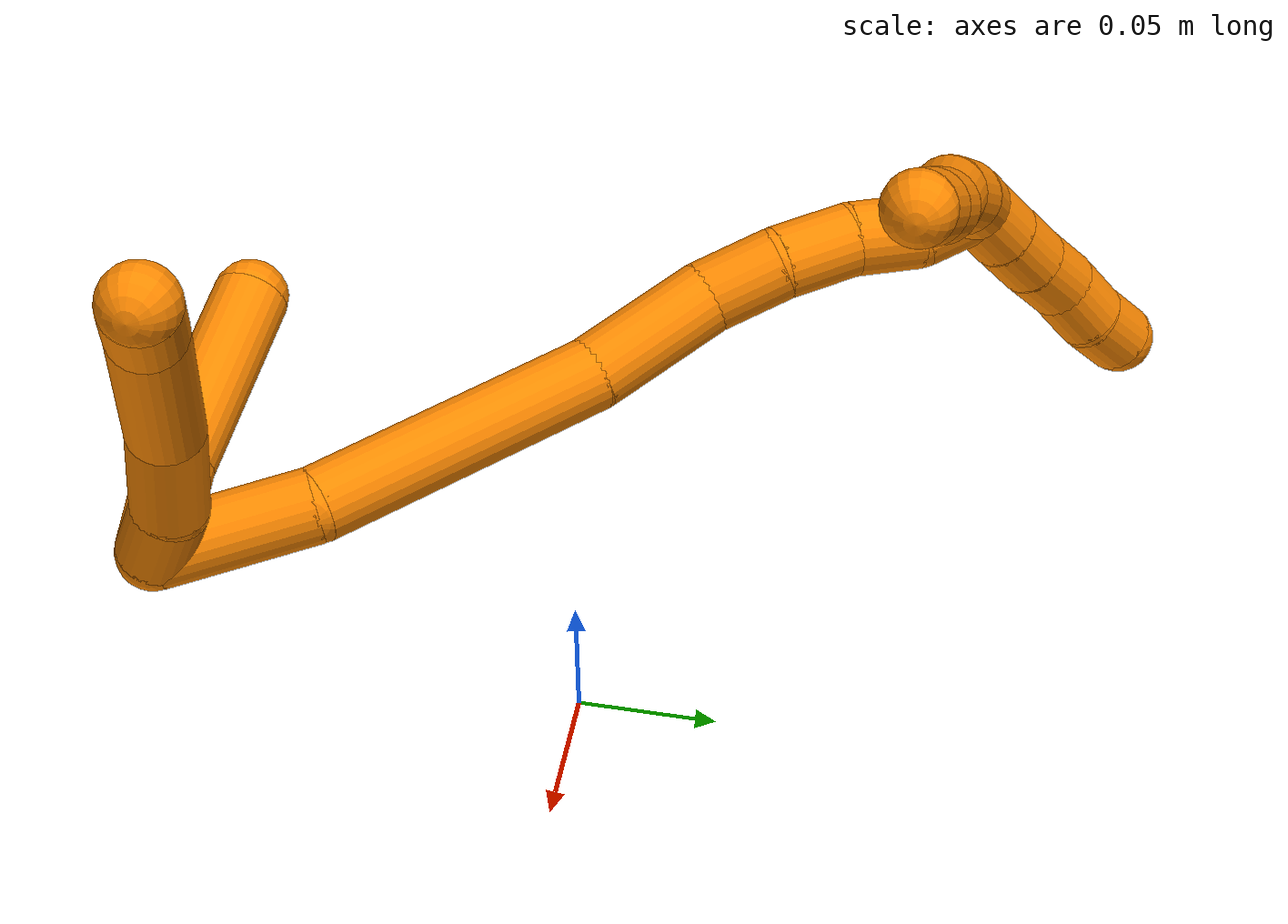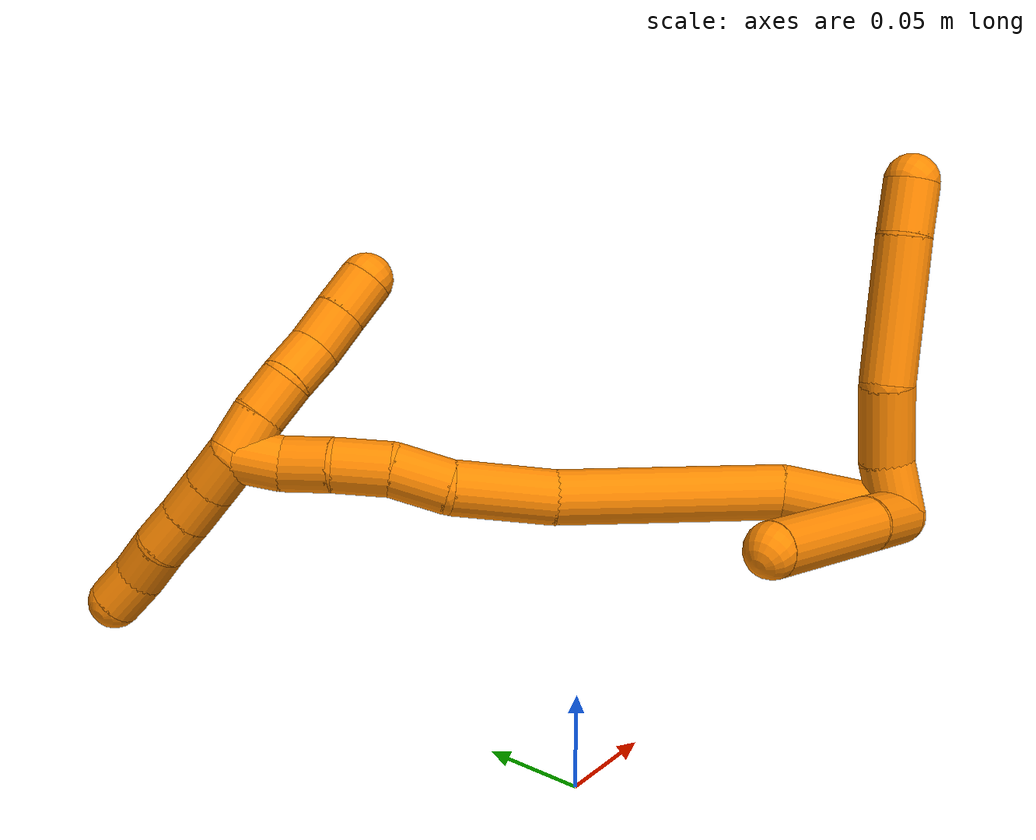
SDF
<sdf version="1.7">
 <world name="default">
  <model name="19">
   <static>0</static>
   <link name="19">
    <collision name="collision-cylinder-e_1_2_8">
     <pose>-0.01147 -0.00306 0.004417 0.605882 -1.13271 -0.392362</pose>
     <geometry><cylinder><radius>0.0125</radius><length>0.025333</length></cylinder></geometry>
     <surface>
      <friction><ode><mu>1.16</mu><mu2>1.16</mu2><slip1>0</slip1><slip2>0</slip2></ode></friction>
      <contact><ode><kp>1e+06</kp><kd>1</kd><max_vel>0</max_vel><min_depth>0.001</min_depth></ode></contact>
     </surface>
    </collision>
    <visual name="visual-cylinder-e_1_2_8">
     <pose>-0.01147 -0.00306 0.004417 0.605882 -1.13271 -0.392362</pose>
     <geometry><cylinder><radius>0.0125</radius><length>0.025333</length></cylinder></geometry>
     <material><ambient>0.996078 0.537255 0 1</ambient></material>
    </visual>
    <collision name="collision-cylinder-e_2_8_9">
     <pose>-0.037577 -0.014695 0.014599 0.978862 -0.956077 -0.538556</pose>
     <geometry><cylinder><radius>0.0125</radius><length>0.035832</length></cylinder></geometry>
     <surface>
      <friction><ode><mu>1.16</mu><mu2>1.16</mu2><slip1>0</slip1><slip2>0</slip2></ode></friction>
      <contact><ode><kp>1e+06</kp><kd>1</kd><max_vel>0</max_vel><min_depth>0.001</min_depth></ode></contact>
     </surface>
    </collision>
    <visual name="visual-cylinder-e_2_8_9">
     <pose>-0.037577 -0.014695 0.014599 0.978862 -0.956077 -0.538556</pose>
     <geometry><cylinder><radius>0.0125</radius><length>0.035832</length></cylinder></geometry>
     <material><ambient>0.996078 0.537255 0 1</ambient></material>
    </visual>
    <collision name="collision-cylinder-e_3_9_10">
     <pose>-0.075669 -0.035621 0.039149 0.581651 -0.806594 -0.254049</pose>
     <geometry><cylinder><radius>0.0125</radius><length>0.064981</length></cylinder></geometry>
     <surface>
      <friction><ode><mu>1.16</mu><mu2>1.16</mu2><slip1>0</slip1><slip2>0</slip2></ode></friction>
      <contact><ode><kp>1e+06</kp><kd>1</kd><max_vel>0</max_vel><min_depth>0.001</min_depth></ode></contact>
     </surface>
    </collision>
    <visual name="visual-cylinder-e_3_9_10">
     <pose>-0.075669 -0.035621 0.039149 0.581651 -0.806594 -0.254049</pose>
     <geometry><cylinder><radius>0.0125</radius><length>0.064981</length></cylinder></geometry>
     <material><ambient>0.996078 0.537255 0 1</ambient></material>
    </visual>
    <collision name="collision-cylinder-e_4_10_6">
     <pose>-0.107109 -0.051612 0.066014 0.423146 -0.733352 -0.164603</pose>
     <geometry><cylinder><radius>0.0125</radius><length>0.023854</length></cylinder></geometry>
     <surface>
      <friction><ode><mu>1.16</mu><mu2>1.16</mu2><slip1>0</slip1><slip2>0</slip2></ode></friction>
      <contact><ode><kp>1e+06</kp><kd>1</kd><max_vel>0</max_vel><min_depth>0.001</min_depth></ode></contact>
     </surface>
    </collision>
    <visual name="visual-cylinder-e_4_10_6">
     <pose>-0.107109 -0.051612 0.066014 0.423146 -0.733352 -0.164603</pose>
     <geometry><cylinder><radius>0.0125</radius><length>0.023854</length></cylinder></geometry>
     <material><ambient>0.996078 0.537255 0 1</ambient></material>
    </visual>
    <collision name="collision-cylinder-e_1_2_11">
     <pose>-0.006689 -0.00482 -0.013537 2.79954 -0.435666 -1.81639</pose>
     <geometry><cylinder><radius>0.0125</radius><length>0.0317</length></cylinder></geometry>
     <surface>
      <friction><ode><mu>1.16</mu><mu2>1.16</mu2><slip1>0</slip1><slip2>0</slip2></ode></friction>
      <contact><ode><kp>1e+06</kp><kd>1</kd><max_vel>0</max_vel><min_depth>0.001</min_depth></ode></contact>
     </surface>
    </collision>
    <visual name="visual-cylinder-e_1_2_11">
     <pose>-0.006689 -0.00482 -0.013537 2.79954 -0.435666 -1.81639</pose>
     <geometry><cylinder><radius>0.0125</radius><length>0.0317</length></cylinder></geometry>
     <material><ambient>0.996078 0.537255 0 1</ambient></material>
    </visual>
    <collision name="collision-cylinder-e_2_11_5">
     <pose>-0.028436 -0.014964 -0.057259 2.967 -0.456644 -2.42119</pose>
     <geometry><cylinder><radius>0.0125</radius><length>0.0683</length></cylinder></geometry>
     <surface>
      <friction><ode><mu>1.16</mu><mu2>1.16</mu2><slip1>0</slip1><slip2>0</slip2></ode></friction>
      <contact><ode><kp>1e+06</kp><kd>1</kd><max_vel>0</max_vel><min_depth>0.001</min_depth></ode></contact>
     </surface>
    </collision>
    <visual name="visual-cylinder-e_2_11_5">
     <pose>-0.028436 -0.014964 -0.057259 2.967 -0.456644 -2.42119</pose>
     <geometry><cylinder><radius>0.0125</radius><length>0.0683</length></cylinder></geometry>
     <material><ambient>0.996078 0.537255 0 1</ambient></material>
    </visual>
    <collision name="collision-cylinder-e_1_2_12">
     <pose>-0.018916 0.015599 -0.009122 -2.09995 -0.808265 1.28126</pose>
     <geometry><cylinder><radius>0.0125</radius><length>0.052321</length></cylinder></geometry>
     <surface>
      <friction><ode><mu>1.16</mu><mu2>1.16</mu2><slip1>0</slip1><slip2>0</slip2></ode></friction>
      <contact><ode><kp>1e+06</kp><kd>1</kd><max_vel>0</max_vel><min_depth>0.001</min_depth></ode></contact>
     </surface>
    </collision>
    <visual name="visual-cylinder-e_1_2_12">
     <pose>-0.018916 0.015599 -0.009122 -2.09995 -0.808265 1.28126</pose>
     <geometry><cylinder><radius>0.0125</radius><length>0.052321</length></cylinder></geometry>
     <material><ambient>0.996078 0.537255 0 1</ambient></material>
    </visual>
    <collision name="collision-cylinder-e_2_12_13">
     <pose>-0.06898 0.055768 -0.050737 -2.49416 -0.65277 1.57961</pose>
     <geometry><cylinder><radius>0.0125</radius><length>0.102561</length></cylinder></geometry>
     <surface>
      <friction><ode><mu>1.16</mu><mu2>1.16</mu2><slip1>0</slip1><slip2>0</slip2></ode></friction>
      <contact><ode><kp>1e+06</kp><kd>1</kd><max_vel>0</max_vel><min_depth>0.001</min_depth></ode></contact>
     </surface>
    </collision>
    <visual name="visual-cylinder-e_2_12_13">
     <pose>-0.06898 0.055768 -0.050737 -2.49416 -0.65277 1.57961</pose>
     <geometry><cylinder><radius>0.0125</radius><length>0.102561</length></cylinder></geometry>
     <material><ambient>0.996078 0.537255 0 1</ambient></material>
    </visual>
    <collision name="collision-cylinder-e_3_13_14">
     <pose>-0.116785 0.088548 -0.097843 -2.62973 -0.782325 2.0108</pose>
     <geometry><cylinder><radius>0.0125</radius><length>0.047262</length></cylinder></geometry>
     <surface>
      <friction><ode><mu>1.16</mu><mu2>1.16</mu2><slip1>0</slip1><slip2>0</slip2></ode></friction>
      <contact><ode><kp>1e+06</kp><kd>1</kd><max_vel>0</max_vel><min_depth>0.001</min_depth></ode></contact>
     </surface>
    </collision>
    <visual name="visual-cylinder-e_3_13_14">
     <pose>-0.116785 0.088548 -0.097843 -2.62973 -0.782325 2.0108</pose>
     <geometry><cylinder><radius>0.0125</radius><length>0.047262</length></cylinder></geometry>
     <material><ambient>0.996078 0.537255 0 1</ambient></material>
    </visual>
    <collision name="collision-cylinder-e_4_14_15">
     <pose>-0.144262 0.102864 -0.117367 -2.24821 -0.943941 1.63438</pose>
     <geometry><cylinder><radius>0.0125</radius><length>0.026717</length></cylinder></geometry>
     <surface>
      <friction><ode><mu>1.16</mu><mu2>1.16</mu2><slip1>0</slip1><slip2>0</slip2></ode></friction>
      <contact><ode><kp>1e+06</kp><kd>1</kd><max_vel>0</max_vel><min_depth>0.001</min_depth></ode></contact>
     </surface>
    </collision>
    <visual name="visual-cylinder-e_4_14_15">
     <pose>-0.144262 0.102864 -0.117367 -2.24821 -0.943941 1.63438</pose>
     <geometry><cylinder><radius>0.0125</radius><length>0.026717</length></cylinder></geometry>
     <material><ambient>0.996078 0.537255 0 1</ambient></material>
    </visual>
    <collision name="collision-cylinder-e_5_15_16">
     <pose>-0.163651 0.116406 -0.128699 -2.28303 -0.717367 1.37245</pose>
     <geometry><cylinder><radius>0.0125</radius><length>0.026076</length></cylinder></geometry>
     <surface>
      <friction><ode><mu>1.16</mu><mu2>1.16</mu2><slip1>0</slip1><slip2>0</slip2></ode></friction>
      <contact><ode><kp>1e+06</kp><kd>1</kd><max_vel>0</max_vel><min_depth>0.001</min_depth></ode></contact>
     </surface>
    </collision>
    <visual name="visual-cylinder-e_5_15_16">
     <pose>-0.163651 0.116406 -0.128699 -2.28303 -0.717367 1.37245</pose>
     <geometry><cylinder><radius>0.0125</radius><length>0.026076</length></cylinder></geometry>
     <material><ambient>0.996078 0.537255 0 1</ambient></material>
    </visual>
    <collision name="collision-cylinder-e_6_16_17">
     <pose>-0.178855 0.132236 -0.139767 -2.0764 -0.604841 0.973664</pose>
     <geometry><cylinder><radius>0.0125</radius><length>0.023327</length></cylinder></geometry>
     <surface>
      <friction><ode><mu>1.16</mu><mu2>1.16</mu2><slip1>0</slip1><slip2>0</slip2></ode></friction>
      <contact><ode><kp>1e+06</kp><kd>1</kd><max_vel>0</max_vel><min_depth>0.001</min_depth></ode></contact>
     </surface>
    </collision>
    <visual name="visual-cylinder-e_6_16_17">
     <pose>-0.178855 0.132236 -0.139767 -2.0764 -0.604841 0.973664</pose>
     <geometry><cylinder><radius>0.0125</radius><length>0.023327</length></cylinder></geometry>
     <material><ambient>0.996078 0.537255 0 1</ambient></material>
    </visual>
    <collision name="collision-cylinder-e_7_17_1">
     <pose>-0.193648 0.145831 -0.149363 -2.33142 -0.849325 1.62386</pose>
     <geometry><cylinder><radius>0.0125</radius><length>0.021737</length></cylinder></geometry>
     <surface>
      <friction><ode><mu>1.16</mu><mu2>1.16</mu2><slip1>0</slip1><slip2>0</slip2></ode></friction>
      <contact><ode><kp>1e+06</kp><kd>1</kd><max_vel>0</max_vel><min_depth>0.001</min_depth></ode></contact>
     </surface>
    </collision>
    <visual name="visual-cylinder-e_7_17_1">
     <pose>-0.193648 0.145831 -0.149363 -2.33142 -0.849325 1.62386</pose>
     <geometry><cylinder><radius>0.0125</radius><length>0.021737</length></cylinder></geometry>
     <material><ambient>0.996078 0.537255 0 1</ambient></material>
    </visual>
    <collision name="collision-cylinder-e_1_1_18">
     <pose>-0.205069 0.146706 -0.145905 0.475202 -0.332153 -0.081143</pose>
     <geometry><cylinder><radius>0.0125</radius><length>0.02</length></cylinder></geometry>
     <surface>
      <friction><ode><mu>1.16</mu><mu2>1.16</mu2><slip1>0</slip1><slip2>0</slip2></ode></friction>
      <contact><ode><kp>1e+06</kp><kd>1</kd><max_vel>0</max_vel><min_depth>0.001</min_depth></ode></contact>
     </surface>
    </collision>
    <visual name="visual-cylinder-e_1_1_18">
     <pose>-0.205069 0.146706 -0.145905 0.475202 -0.332153 -0.081143</pose>
     <geometry><cylinder><radius>0.0125</radius><length>0.02</length></cylinder></geometry>
     <material><ambient>0.996078 0.537255 0 1</ambient></material>
    </visual>
    <collision name="collision-cylinder-e_2_18_19">
     <pose>-0.210515 0.137961 -0.128799 0.469966 -0.220351 -0.052955</pose>
     <geometry><cylinder><radius>0.0125</radius><length>0.02</length></cylinder></geometry>
     <surface>
      <friction><ode><mu>1.16</mu><mu2>1.16</mu2><slip1>0</slip1><slip2>0</slip2></ode></friction>
      <contact><ode><kp>1e+06</kp><kd>1</kd><max_vel>0</max_vel><min_depth>0.001</min_depth></ode></contact>
     </surface>
    </collision>
    <visual name="visual-cylinder-e_2_18_19">
     <pose>-0.210515 0.137961 -0.128799 0.469966 -0.220351 -0.052955</pose>
     <geometry><cylinder><radius>0.0125</radius><length>0.02</length></cylinder></geometry>
     <material><ambient>0.996078 0.537255 0 1</ambient></material>
    </visual>
    <collision name="collision-cylinder-e_3_19_20">
     <pose>-0.213969 0.131703 -0.110352 0.186511 -0.127142 -0.011907</pose>
     <geometry><cylinder><radius>0.0125</radius><length>0.02</length></cylinder></geometry>
     <surface>
      <friction><ode><mu>1.16</mu><mu2>1.16</mu2><slip1>0</slip1><slip2>0</slip2></ode></friction>
      <contact><ode><kp>1e+06</kp><kd>1</kd><max_vel>0</max_vel><min_depth>0.001</min_depth></ode></contact>
     </surface>
    </collision>
    <visual name="visual-cylinder-e_3_19_20">
     <pose>-0.213969 0.131703 -0.110352 0.186511 -0.127142 -0.011907</pose>
     <geometry><cylinder><radius>0.0125</radius><length>0.02</length></cylinder></geometry>
     <material><ambient>0.996078 0.537255 0 1</ambient></material>
    </visual>
    <collision name="collision-cylinder-e_4_20_21">
     <pose>-0.217541 0.126492 -0.091476 0.353785 -0.232446 -0.041734</pose>
     <geometry><cylinder><radius>0.0125</radius><length>0.02</length></cylinder></geometry>
     <surface>
      <friction><ode><mu>1.16</mu><mu2>1.16</mu2><slip1>0</slip1><slip2>0</slip2></ode></friction>
      <contact><ode><kp>1e+06</kp><kd>1</kd><max_vel>0</max_vel><min_depth>0.001</min_depth></ode></contact>
     </surface>
    </collision>
    <visual name="visual-cylinder-e_4_20_21">
     <pose>-0.217541 0.126492 -0.091476 0.353785 -0.232446 -0.041734</pose>
     <geometry><cylinder><radius>0.0125</radius><length>0.02</length></cylinder></geometry>
     <material><ambient>0.996078 0.537255 0 1</ambient></material>
    </visual>
    <collision name="collision-cylinder-e_5_21_4">
     <pose>-0.221984 0.119743 -0.073182 0.353091 -0.2156 -0.038609</pose>
     <geometry><cylinder><radius>0.0125</radius><length>0.02</length></cylinder></geometry>
     <surface>
      <friction><ode><mu>1.16</mu><mu2>1.16</mu2><slip1>0</slip1><slip2>0</slip2></ode></friction>
      <contact><ode><kp>1e+06</kp><kd>1</kd><max_vel>0</max_vel><min_depth>0.001</min_depth></ode></contact>
     </surface>
    </collision>
    <visual name="visual-cylinder-e_5_21_4">
     <pose>-0.221984 0.119743 -0.073182 0.353091 -0.2156 -0.038609</pose>
     <geometry><cylinder><radius>0.0125</radius><length>0.02</length></cylinder></geometry>
     <material><ambient>0.996078 0.537255 0 1</ambient></material>
    </visual>
    <collision name="collision-cylinder-e_1_1_22">
     <pose>-0.199266 0.159391 -0.159173 -2.09747 0.257078 -0.441995</pose>
     <geometry><cylinder><radius>0.0125</radius><length>0.02</length></cylinder></geometry>
     <surface>
      <friction><ode><mu>1.16</mu><mu2>1.16</mu2><slip1>0</slip1><slip2>0</slip2></ode></friction>
      <contact><ode><kp>1e+06</kp><kd>1</kd><max_vel>0</max_vel><min_depth>0.001</min_depth></ode></contact>
     </surface>
    </collision>
    <visual name="visual-cylinder-e_1_1_22">
     <pose>-0.199266 0.159391 -0.159173 -2.09747 0.257078 -0.441995</pose>
     <geometry><cylinder><radius>0.0125</radius><length>0.02</length></cylinder></geometry>
     <material><ambient>0.996078 0.537255 0 1</ambient></material>
    </visual>
    <collision name="collision-cylinder-e_2_22_23">
     <pose>-0.194269 0.175997 -0.169133 -2.12468 0.247918 -0.43989</pose>
     <geometry><cylinder><radius>0.0125</radius><length>0.02</length></cylinder></geometry>
     <surface>
      <friction><ode><mu>1.16</mu><mu2>1.16</mu2><slip1>0</slip1><slip2>0</slip2></ode></friction>
      <contact><ode><kp>1e+06</kp><kd>1</kd><max_vel>0</max_vel><min_depth>0.001</min_depth></ode></contact>
     </surface>
    </collision>
    <visual name="visual-cylinder-e_2_22_23">
     <pose>-0.194269 0.175997 -0.169133 -2.12468 0.247918 -0.43989</pose>
     <geometry><cylinder><radius>0.0125</radius><length>0.02</length></cylinder></geometry>
     <material><ambient>0.996078 0.537255 0 1</ambient></material>
    </visual>
    <collision name="collision-cylinder-e_3_23_24">
     <pose>-0.18977 0.192477 -0.179525 -2.14199 0.205932 -0.374052</pose>
     <geometry><cylinder><radius>0.0125</radius><length>0.02</length></cylinder></geometry>
     <surface>
      <friction><ode><mu>1.16</mu><mu2>1.16</mu2><slip1>0</slip1><slip2>0</slip2></ode></friction>
      <contact><ode><kp>1e+06</kp><kd>1</kd><max_vel>0</max_vel><min_depth>0.001</min_depth></ode></contact>
     </surface>
    </collision>
    <visual name="visual-cylinder-e_3_23_24">
     <pose>-0.18977 0.192477 -0.179525 -2.14199 0.205932 -0.374052</pose>
     <geometry><cylinder><radius>0.0125</radius><length>0.02</length></cylinder></geometry>
     <material><ambient>0.996078 0.537255 0 1</ambient></material>
    </visual>
    <collision name="collision-cylinder-e_4_24_25">
     <pose>-0.185086 0.20959 -0.188584 -1.97205 0.267159 -0.400532</pose>
     <geometry><cylinder><radius>0.0125</radius><length>0.02</length></cylinder></geometry>
     <surface>
      <friction><ode><mu>1.16</mu><mu2>1.16</mu2><slip1>0</slip1><slip2>0</slip2></ode></friction>
      <contact><ode><kp>1e+06</kp><kd>1</kd><max_vel>0</max_vel><min_depth>0.001</min_depth></ode></contact>
     </surface>
    </collision>
    <visual name="visual-cylinder-e_4_24_25">
     <pose>-0.185086 0.20959 -0.188584 -1.97205 0.267159 -0.400532</pose>
     <geometry><cylinder><radius>0.0125</radius><length>0.02</length></cylinder></geometry>
     <material><ambient>0.996078 0.537255 0 1</ambient></material>
    </visual>
    <collision name="collision-cylinder-e_5_25_3">
     <pose>-0.180585 0.226791 -0.197576 -2.13145 0.18719 -0.336343</pose>
     <geometry><cylinder><radius>0.0125</radius><length>0.02</length></cylinder></geometry>
     <surface>
      <friction><ode><mu>1.16</mu><mu2>1.16</mu2><slip1>0</slip1><slip2>0</slip2></ode></friction>
      <contact><ode><kp>1e+06</kp><kd>1</kd><max_vel>0</max_vel><min_depth>0.001</min_depth></ode></contact>
     </surface>
    </collision>
    <visual name="visual-cylinder-e_5_25_3">
     <pose>-0.180585 0.226791 -0.197576 -2.13145 0.18719 -0.336343</pose>
     <geometry><cylinder><radius>0.0125</radius><length>0.02</length></cylinder></geometry>
     <material><ambient>0.996078 0.537255 0 1</ambient></material>
    </visual>
    <collision name="collision-sphere-3">
     <pose>-0.178724 0.235112 -0.2028 0 -0 0</pose>
     <geometry><sphere><radius>0.0125</radius></sphere></geometry>
     <surface>
      <friction><ode><mu>1.16</mu><mu2>1.16</mu2><slip1>0</slip1><slip2>0</slip2></ode></friction>
      <contact><ode><kp>1e+06</kp><kd>1</kd><max_vel>0</max_vel><min_depth>0.001</min_depth></ode></contact>
     </surface>
    </collision>
    <visual name="visual-sphere-3">
     <pose>-0.178724 0.235112 -0.2028 0 -0 0</pose>
     <geometry><sphere><radius>0.0125</radius></sphere></geometry>
     <material><ambient>0.996078 0.537255 0 1</ambient></material>
    </visual>
    <collision name="collision-sphere-25">
     <pose>-0.182446 0.21847 -0.192351 0 -0 0</pose>
     <geometry><sphere><radius>0.0125</radius></sphere></geometry>
     <surface>
      <friction><ode><mu>1.16</mu><mu2>1.16</mu2><slip1>0</slip1><slip2>0</slip2></ode></friction>
      <contact><ode><kp>1e+06</kp><kd>1</kd><max_vel>0</max_vel><min_depth>0.001</min_depth></ode></contact>
     </surface>
    </collision>
    <visual name="visual-sphere-25">
     <pose>-0.182446 0.21847 -0.192351 0 -0 0</pose>
     <geometry><sphere><radius>0.0125</radius></sphere></geometry>
     <material><ambient>0.996078 0.537255 0 1</ambient></material>
    </visual>
    <collision name="collision-sphere-24">
     <pose>-0.187726 0.200711 -0.184817 0 -0 0</pose>
     <geometry><sphere><radius>0.0125</radius></sphere></geometry>
     <surface>
      <friction><ode><mu>1.16</mu><mu2>1.16</mu2><slip1>0</slip1><slip2>0</slip2></ode></friction>
      <contact><ode><kp>1e+06</kp><kd>1</kd><max_vel>0</max_vel><min_depth>0.001</min_depth></ode></contact>
     </surface>
    </collision>
    <visual name="visual-sphere-24">
     <pose>-0.187726 0.200711 -0.184817 0 -0 0</pose>
     <geometry><sphere><radius>0.0125</radius></sphere></geometry>
     <material><ambient>0.996078 0.537255 0 1</ambient></material>
    </visual>
    <collision name="collision-sphere-23">
     <pose>-0.191815 0.184242 -0.174232 0 -0 0</pose>
     <geometry><sphere><radius>0.0125</radius></sphere></geometry>
     <surface>
      <friction><ode><mu>1.16</mu><mu2>1.16</mu2><slip1>0</slip1><slip2>0</slip2></ode></friction>
      <contact><ode><kp>1e+06</kp><kd>1</kd><max_vel>0</max_vel><min_depth>0.001</min_depth></ode></contact>
     </surface>
    </collision>
    <visual name="visual-sphere-23">
     <pose>-0.191815 0.184242 -0.174232 0 -0 0</pose>
     <geometry><sphere><radius>0.0125</radius></sphere></geometry>
     <material><ambient>0.996078 0.537255 0 1</ambient></material>
    </visual>
    <collision name="collision-sphere-22">
     <pose>-0.196723 0.167752 -0.164034 0 -0 0</pose>
     <geometry><sphere><radius>0.0125</radius></sphere></geometry>
     <surface>
      <friction><ode><mu>1.16</mu><mu2>1.16</mu2><slip1>0</slip1><slip2>0</slip2></ode></friction>
      <contact><ode><kp>1e+06</kp><kd>1</kd><max_vel>0</max_vel><min_depth>0.001</min_depth></ode></contact>
     </surface>
    </collision>
    <visual name="visual-sphere-22">
     <pose>-0.196723 0.167752 -0.164034 0 -0 0</pose>
     <geometry><sphere><radius>0.0125</radius></sphere></geometry>
     <material><ambient>0.996078 0.537255 0 1</ambient></material>
    </visual>
    <collision name="collision-sphere-4">
     <pose>-0.224123 0.116365 -0.064016 0 -0 0</pose>
     <geometry><sphere><radius>0.0125</radius></sphere></geometry>
     <surface>
      <friction><ode><mu>1.16</mu><mu2>1.16</mu2><slip1>0</slip1><slip2>0</slip2></ode></friction>
      <contact><ode><kp>1e+06</kp><kd>1</kd><max_vel>0</max_vel><min_depth>0.001</min_depth></ode></contact>
     </surface>
    </collision>
    <visual name="visual-sphere-4">
     <pose>-0.224123 0.116365 -0.064016 0 -0 0</pose>
     <geometry><sphere><radius>0.0125</radius></sphere></geometry>
     <material><ambient>0.996078 0.537255 0 1</ambient></material>
    </visual>
    <collision name="collision-sphere-21">
     <pose>-0.219844 0.123121 -0.082348 0 -0 0</pose>
     <geometry><sphere><radius>0.0125</radius></sphere></geometry>
     <surface>
      <friction><ode><mu>1.16</mu><mu2>1.16</mu2><slip1>0</slip1><slip2>0</slip2></ode></friction>
      <contact><ode><kp>1e+06</kp><kd>1</kd><max_vel>0</max_vel><min_depth>0.001</min_depth></ode></contact>
     </surface>
    </collision>
    <visual name="visual-sphere-21">
     <pose>-0.219844 0.123121 -0.082348 0 -0 0</pose>
     <geometry><sphere><radius>0.0125</radius></sphere></geometry>
     <material><ambient>0.996078 0.537255 0 1</ambient></material>
    </visual>
    <collision name="collision-sphere-20">
     <pose>-0.215237 0.129864 -0.100604 0 -0 0</pose>
     <geometry><sphere><radius>0.0125</radius></sphere></geometry>
     <surface>
      <friction><ode><mu>1.16</mu><mu2>1.16</mu2><slip1>0</slip1><slip2>0</slip2></ode></friction>
      <contact><ode><kp>1e+06</kp><kd>1</kd><max_vel>0</max_vel><min_depth>0.001</min_depth></ode></contact>
     </surface>
    </collision>
    <visual name="visual-sphere-20">
     <pose>-0.215237 0.129864 -0.100604 0 -0 0</pose>
     <geometry><sphere><radius>0.0125</radius></sphere></geometry>
     <material><ambient>0.996078 0.537255 0 1</ambient></material>
    </visual>
    <collision name="collision-sphere-11">
     <pose>-0.013378 -0.00964 -0.027074 0 -0 0</pose>
     <geometry><sphere><radius>0.0125</radius></sphere></geometry>
     <surface>
      <friction><ode><mu>1.16</mu><mu2>1.16</mu2><slip1>0</slip1><slip2>0</slip2></ode></friction>
      <contact><ode><kp>1e+06</kp><kd>1</kd><max_vel>0</max_vel><min_depth>0.001</min_depth></ode></contact>
     </surface>
    </collision>
    <visual name="visual-sphere-11">
     <pose>-0.013378 -0.00964 -0.027074 0 -0 0</pose>
     <geometry><sphere><radius>0.0125</radius></sphere></geometry>
     <material><ambient>0.996078 0.537255 0 1</ambient></material>
    </visual>
    <collision name="collision-sphere-6">
     <pose>-0.115092 -0.05525 0.074093 0 -0 0</pose>
     <geometry><sphere><radius>0.0125</radius></sphere></geometry>
     <surface>
      <friction><ode><mu>1.16</mu><mu2>1.16</mu2><slip1>0</slip1><slip2>0</slip2></ode></friction>
      <contact><ode><kp>1e+06</kp><kd>1</kd><max_vel>0</max_vel><min_depth>0.001</min_depth></ode></contact>
     </surface>
    </collision>
    <visual name="visual-sphere-6">
     <pose>-0.115092 -0.05525 0.074093 0 -0 0</pose>
     <geometry><sphere><radius>0.0125</radius></sphere></geometry>
     <material><ambient>0.996078 0.537255 0 1</ambient></material>
    </visual>
    <collision name="collision-sphere-10">
     <pose>-0.099125 -0.047973 0.057934 0 -0 0</pose>
     <geometry><sphere><radius>0.0125</radius></sphere></geometry>
     <surface>
      <friction><ode><mu>1.16</mu><mu2>1.16</mu2><slip1>0</slip1><slip2>0</slip2></ode></friction>
      <contact><ode><kp>1e+06</kp><kd>1</kd><max_vel>0</max_vel><min_depth>0.001</min_depth></ode></contact>
     </surface>
    </collision>
    <visual name="visual-sphere-10">
     <pose>-0.099125 -0.047973 0.057934 0 -0 0</pose>
     <geometry><sphere><radius>0.0125</radius></sphere></geometry>
     <material><ambient>0.996078 0.537255 0 1</ambient></material>
    </visual>
    <collision name="collision-sphere-9">
     <pose>-0.052213 -0.023269 0.020364 0 -0 0</pose>
     <geometry><sphere><radius>0.0125</radius></sphere></geometry>
     <surface>
      <friction><ode><mu>1.16</mu><mu2>1.16</mu2><slip1>0</slip1><slip2>0</slip2></ode></friction>
      <contact><ode><kp>1e+06</kp><kd>1</kd><max_vel>0</max_vel><min_depth>0.001</min_depth></ode></contact>
     </surface>
    </collision>
    <visual name="visual-sphere-9">
     <pose>-0.052213 -0.023269 0.020364 0 -0 0</pose>
     <geometry><sphere><radius>0.0125</radius></sphere></geometry>
     <material><ambient>0.996078 0.537255 0 1</ambient></material>
    </visual>
    <collision name="collision-sphere-2">
     <geometry><sphere><radius>0.0125</radius></sphere></geometry>
     <surface>
      <friction><ode><mu>1.16</mu><mu2>1.16</mu2><slip1>0</slip1><slip2>0</slip2></ode></friction>
      <contact><ode><kp>1e+06</kp><kd>1</kd><max_vel>0</max_vel><min_depth>0.001</min_depth></ode></contact>
     </surface>
    </collision>
    <visual name="visual-sphere-2">
     <geometry><sphere><radius>0.0125</radius></sphere></geometry>
     <material><ambient>0.996078 0.537255 0 1</ambient></material>
    </visual>
    <collision name="collision-sphere-19">
     <pose>-0.212701 0.133542 -0.120099 0 -0 0</pose>
     <geometry><sphere><radius>0.0125</radius></sphere></geometry>
     <surface>
      <friction><ode><mu>1.16</mu><mu2>1.16</mu2><slip1>0</slip1><slip2>0</slip2></ode></friction>
      <contact><ode><kp>1e+06</kp><kd>1</kd><max_vel>0</max_vel><min_depth>0.001</min_depth></ode></contact>
     </surface>
    </collision>
    <visual name="visual-sphere-19">
     <pose>-0.212701 0.133542 -0.120099 0 -0 0</pose>
     <geometry><sphere><radius>0.0125</radius></sphere></geometry>
     <material><ambient>0.996078 0.537255 0 1</ambient></material>
    </visual>
    <collision name="collision-sphere-8">
     <pose>-0.02294 -0.00612 0.008834 0 -0 0</pose>
     <geometry><sphere><radius>0.0125</radius></sphere></geometry>
     <surface>
      <friction><ode><mu>1.16</mu><mu2>1.16</mu2><slip1>0</slip1><slip2>0</slip2></ode></friction>
      <contact><ode><kp>1e+06</kp><kd>1</kd><max_vel>0</max_vel><min_depth>0.001</min_depth></ode></contact>
     </surface>
    </collision>
    <visual name="visual-sphere-8">
     <pose>-0.02294 -0.00612 0.008834 0 -0 0</pose>
     <geometry><sphere><radius>0.0125</radius></sphere></geometry>
     <material><ambient>0.996078 0.537255 0 1</ambient></material>
    </visual>
    <collision name="collision-sphere-5">
     <pose>-0.043494 -0.020288 -0.087444 0 -0 0</pose>
     <geometry><sphere><radius>0.0125</radius></sphere></geometry>
     <surface>
      <friction><ode><mu>1.16</mu><mu2>1.16</mu2><slip1>0</slip1><slip2>0</slip2></ode></friction>
      <contact><ode><kp>1e+06</kp><kd>1</kd><max_vel>0</max_vel><min_depth>0.001</min_depth></ode></contact>
     </surface>
    </collision>
    <visual name="visual-sphere-5">
     <pose>-0.043494 -0.020288 -0.087444 0 -0 0</pose>
     <geometry><sphere><radius>0.0125</radius></sphere></geometry>
     <material><ambient>0.996078 0.537255 0 1</ambient></material>
    </visual>
    <collision name="collision-sphere-12">
     <pose>-0.037833 0.031198 -0.018244 0 -0 0</pose>
     <geometry><sphere><radius>0.0125</radius></sphere></geometry>
     <surface>
      <friction><ode><mu>1.16</mu><mu2>1.16</mu2><slip1>0</slip1><slip2>0</slip2></ode></friction>
      <contact><ode><kp>1e+06</kp><kd>1</kd><max_vel>0</max_vel><min_depth>0.001</min_depth></ode></contact>
     </surface>
    </collision>
    <visual name="visual-sphere-12">
     <pose>-0.037833 0.031198 -0.018244 0 -0 0</pose>
     <geometry><sphere><radius>0.0125</radius></sphere></geometry>
     <material><ambient>0.996078 0.537255 0 1</ambient></material>
    </visual>
    <collision name="collision-sphere-13">
     <pose>-0.100127 0.080339 -0.083231 0 -0 0</pose>
     <geometry><sphere><radius>0.0125</radius></sphere></geometry>
     <surface>
      <friction><ode><mu>1.16</mu><mu2>1.16</mu2><slip1>0</slip1><slip2>0</slip2></ode></friction>
      <contact><ode><kp>1e+06</kp><kd>1</kd><max_vel>0</max_vel><min_depth>0.001</min_depth></ode></contact>
     </surface>
    </collision>
    <visual name="visual-sphere-13">
     <pose>-0.100127 0.080339 -0.083231 0 -0 0</pose>
     <geometry><sphere><radius>0.0125</radius></sphere></geometry>
     <material><ambient>0.996078 0.537255 0 1</ambient></material>
    </visual>
    <collision name="collision-sphere-14">
     <pose>-0.133443 0.096758 -0.112456 0 -0 0</pose>
     <geometry><sphere><radius>0.0125</radius></sphere></geometry>
     <surface>
      <friction><ode><mu>1.16</mu><mu2>1.16</mu2><slip1>0</slip1><slip2>0</slip2></ode></friction>
      <contact><ode><kp>1e+06</kp><kd>1</kd><max_vel>0</max_vel><min_depth>0.001</min_depth></ode></contact>
     </surface>
    </collision>
    <visual name="visual-sphere-14">
     <pose>-0.133443 0.096758 -0.112456 0 -0 0</pose>
     <geometry><sphere><radius>0.0125</radius></sphere></geometry>
     <material><ambient>0.996078 0.537255 0 1</ambient></material>
    </visual>
    <collision name="collision-sphere-15">
     <pose>-0.15508 0.10897 -0.122279 0 -0 0</pose>
     <geometry><sphere><radius>0.0125</radius></sphere></geometry>
     <surface>
      <friction><ode><mu>1.16</mu><mu2>1.16</mu2><slip1>0</slip1><slip2>0</slip2></ode></friction>
      <contact><ode><kp>1e+06</kp><kd>1</kd><max_vel>0</max_vel><min_depth>0.001</min_depth></ode></contact>
     </surface>
    </collision>
    <visual name="visual-sphere-15">
     <pose>-0.15508 0.10897 -0.122279 0 -0 0</pose>
     <geometry><sphere><radius>0.0125</radius></sphere></geometry>
     <material><ambient>0.996078 0.537255 0 1</ambient></material>
    </visual>
    <collision name="collision-sphere-16">
     <pose>-0.172223 0.123842 -0.13512 0 -0 0</pose>
     <geometry><sphere><radius>0.0125</radius></sphere></geometry>
     <surface>
      <friction><ode><mu>1.16</mu><mu2>1.16</mu2><slip1>0</slip1><slip2>0</slip2></ode></friction>
      <contact><ode><kp>1e+06</kp><kd>1</kd><max_vel>0</max_vel><min_depth>0.001</min_depth></ode></contact>
     </surface>
    </collision>
    <visual name="visual-sphere-16">
     <pose>-0.172223 0.123842 -0.13512 0 -0 0</pose>
     <geometry><sphere><radius>0.0125</radius></sphere></geometry>
     <material><ambient>0.996078 0.537255 0 1</ambient></material>
    </visual>
    <collision name="collision-sphere-17">
     <pose>-0.185487 0.14063 -0.144414 0 -0 0</pose>
     <geometry><sphere><radius>0.0125</radius></sphere></geometry>
     <surface>
      <friction><ode><mu>1.16</mu><mu2>1.16</mu2><slip1>0</slip1><slip2>0</slip2></ode></friction>
      <contact><ode><kp>1e+06</kp><kd>1</kd><max_vel>0</max_vel><min_depth>0.001</min_depth></ode></contact>
     </surface>
    </collision>
    <visual name="visual-sphere-17">
     <pose>-0.185487 0.14063 -0.144414 0 -0 0</pose>
     <geometry><sphere><radius>0.0125</radius></sphere></geometry>
     <material><ambient>0.996078 0.537255 0 1</ambient></material>
    </visual>
    <collision name="collision-sphere-1">
     <pose>-0.201808 0.151031 -0.154311 0 -0 0</pose>
     <geometry><sphere><radius>0.0125</radius></sphere></geometry>
     <surface>
      <friction><ode><mu>1.16</mu><mu2>1.16</mu2><slip1>0</slip1><slip2>0</slip2></ode></friction>
      <contact><ode><kp>1e+06</kp><kd>1</kd><max_vel>0</max_vel><min_depth>0.001</min_depth></ode></contact>
     </surface>
    </collision>
    <visual name="visual-sphere-1">
     <pose>-0.201808 0.151031 -0.154311 0 -0 0</pose>
     <geometry><sphere><radius>0.0125</radius></sphere></geometry>
     <material><ambient>0.996078 0.537255 0 1</ambient></material>
    </visual>
    <collision name="collision-sphere-18">
     <pose>-0.20833 0.14238 -0.137499 0 -0 0</pose>
     <geometry><sphere><radius>0.0125</radius></sphere></geometry>
     <surface>
      <friction><ode><mu>1.16</mu><mu2>1.16</mu2><slip1>0</slip1><slip2>0</slip2></ode></friction>
      <contact><ode><kp>1e+06</kp><kd>1</kd><max_vel>0</max_vel><min_depth>0.001</min_depth></ode></contact>
     </surface>
    </collision>
    <visual name="visual-sphere-18">
     <pose>-0.20833 0.14238 -0.137499 0 -0 0</pose>
     <geometry><sphere><radius>0.0125</radius></sphere></geometry>
     <material><ambient>0.996078 0.537255 0 1</ambient></material>
    </visual>
    <inertial>
     <pose>-0.108948 0.066628 -0.069019 0 -0 0</pose>
     <mass>0.75</mass>
     <inertia><ixx>5.3e-05</ixx><ixy>0</ixy><ixz>0</ixz><iyy>0.000189</iyy><iyz>0</iyz><izz>6.5e-05</izz></inertia>
    </inertial>
   </link>
   <pose>0.081434 -0.115805 0.146242 -1.09993 0.889726 -1.16475</pose>
  </model>
 </world>
</sdf>
